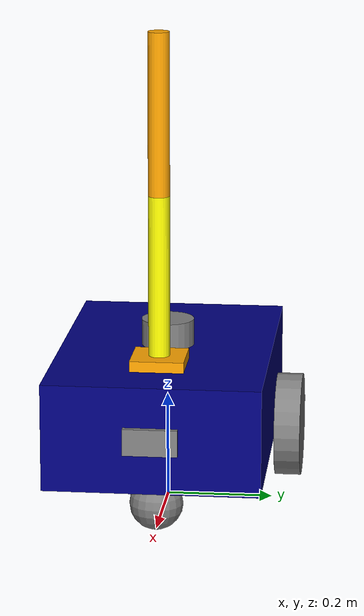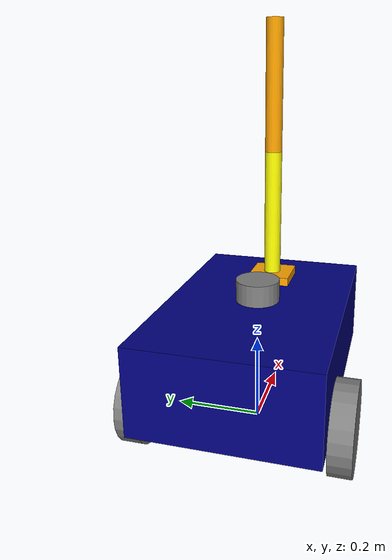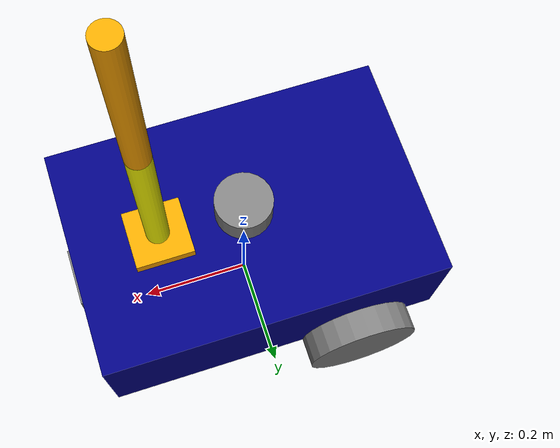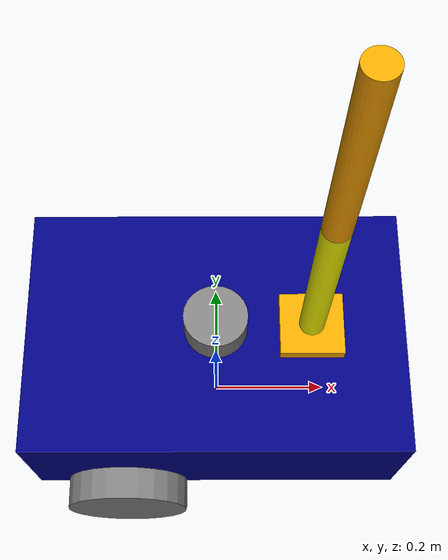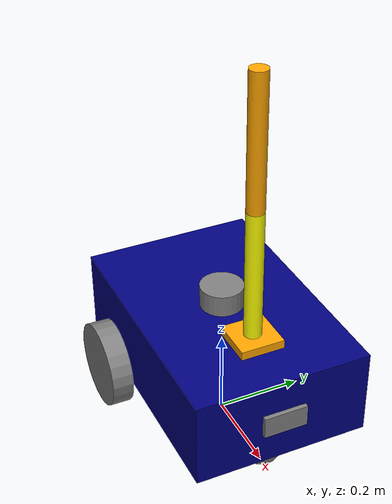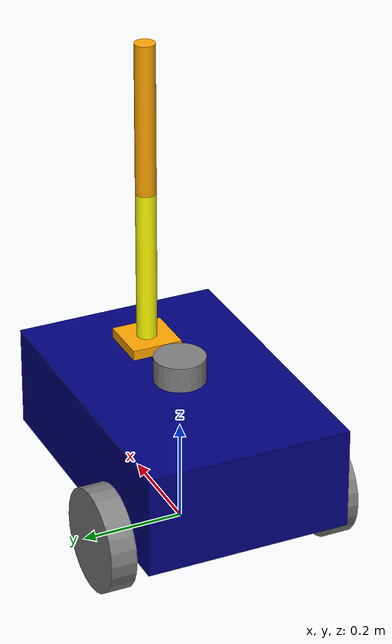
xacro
<?xml version="1.0"?>
<robot name="nav2_robot" xmlns:xacro="http://www.ros.org/wiki/xacro">

    <xacro:include filename="common_properties.xacro"/>

    <xacro:include filename="mobile_base.xacro"/>

    <xacro:include filename="mobile_base_gazebo.xacro"/>

    <xacro:include filename="arm.xacro"/>

    <xacro:include filename="mobile_arm_gazebo.xacro"/>

    <xacro:include filename="camera.xacro"/>

    <xacro:include filename="lidar.xacro"/>

    <joint name="base_arm_base_joint" type="fixed">
        <parent link="base_link"/>
        <child link="arm_base_link"/>
        <origin xyz="${(base_length/4.0)} 0 ${base_height}" rpy="0 0 0"/>
    </joint>
</robot>

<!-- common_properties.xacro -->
<robot xmlns:xacro="http://www.ros.org/wiki/xacro">

    <material name="blue">
        <color rgba="0.0 0.0 0.5 1.0"/>
    </material>
    <material name="grey">
        <color rgba="0.5 0.5 0.5 1.0"/>
    </material>

    <xacro:macro name="box_inertia" params="m x y z o_xyz o_rpy">
        <inertial>
            <mass value="${m}"/>
            <origin xyz="${o_xyz}" rpy="${o_rpy}"/>
            <inertia ixx="${(m/12)*(y*y+z*z)}" ixy="0.0" ixz="0.0"
            iyy="${(m/12)*(x*x+z*z)}" iyz="0.0" izz="${(m/12)*(y*y+x*x)}"/>
        </inertial>
    </xacro:macro>

    <xacro:macro name="cylinder_inertia" params="m r l o_xyz o_rpy">
        <inertial>
            <mass value="${m}"/>
            <origin xyz="${o_xyz}" rpy="${o_rpy}"/>
            <inertia ixx="${(m/12.0)*(3*r*r+l*l)}" ixy="0.0" ixz="0.0" iyy="${(m/12.0)*(3*r*r+l*l)}" iyz="0.0" izz="${(m*r*r)/2.0}"/>
        </inertial>
    </xacro:macro>

    <xacro:macro name="sphere_inertia" params="m r o_xyz o_rpy">
        <inertial>
            <mass value="${m}"/>
            <origin xyz="${o_xyz}" rpy="${o_rpy}"/>
            <inertia ixx="${(2*m*r*r)/5.0}" ixy="0.0" ixz="0.0" iyy="${(2*m*r*r)/5.0}" iyz="0.0" izz="${(2*m*r*r)/5.0}"/>
        </inertial>
    </xacro:macro>

</robot>

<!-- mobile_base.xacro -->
<robot xmlns:xacro="http://www.ros.org/wiki/xacro">

    <xacro:property name="base_length" value="0.6"/>
    <xacro:property name="base_width" value="0.4"/>
    <xacro:property name="base_height" value="0.2"/>
    <xacro:property name="wheel_radius" value="0.1"/>
    <xacro:property name="wheel_length" value="0.05"/>

    <link name="base_footprint">
        <origin xyz="0 0 0" rpy="0 0 0"/>
    </link>

    <link name="base_link">
        <visual>
            <geometry>
                <box size="${base_length} ${base_width} ${base_height}"/>
            </geometry>
            <origin xyz="0 0 ${base_height/2.0}" rpy="0 0 0"/>
            <material name="blue"/>
        </visual>
        <collision>
            <geometry>
                <box size="${base_length} ${base_width} ${base_height}"/>
            </geometry>
            <origin xyz="0 0 ${base_height/2.0}" rpy="0 0 0"/>
        </collision>
        <xacro:box_inertia m="5.0" x="${base_length}" y="${base_width}" z="${base_height}"
        o_xyz="0 0 ${base_height/2.0}" o_rpy="0 0 0"/>
    </link>

    <xacro:macro name="wheel_link" params="prefix">
        <link name="${prefix}_wheel_link">
            <visual>
                <geometry>
                    <cylinder radius="${wheel_radius}" length="${wheel_length}"/>
                </geometry>
                <origin xyz="0 0 0" rpy="${pi / 2.0} 0 0"/>
                <material name="grey"/>
            </visual>
            <collision>
                <geometry>
                    <sphere radius="${wheel_radius}"/>
                </geometry>
                <origin xyz="0 0 0" rpy="0 0 0"/>
            </collision>
            <xacro:cylinder_inertia m="1.0" r="${wheel_radius}" l="${wheel_length}" o_xyz="0 0 0" o_rpy="${pi/2.0} 0 0"/>
        </link>
    </xacro:macro>

    <xacro:wheel_link prefix="right"/>
    <xacro:wheel_link prefix="left"/>

    <link name="caster_wheel_link">
        <visual>
            <geometry>
                <sphere radius="${wheel_radius/2.0}"/>
            </geometry>
            <origin xyz="0 0 0" rpy="0 0 0"/>
            <material name="grey"/>
        </visual>
        <collision>
            <geometry>
                    <sphere radius="${wheel_radius/2.0}"/>
            </geometry>
            <origin xyz="0 0 0" rpy="0 0 0"/>
        </collision>
        <xacro:sphere_inertia m="0.5" r="${wheel_radius/2.0}" o_xyz="0 0 0" o_rpy="0 0 0"/>
    </link>

    <joint name="base_footprint_joint" type="fixed">
        <parent link="base_footprint"/>
        <child link="base_link"/>
        <origin xyz="0 0 ${wheel_radius}" rpy="0 0 0"/>
    </joint>

    <joint name="base_right_wheel_joint" type="continuous">
        <parent link="base_link"/>
        <child link="right_wheel_link"/>
        <origin xyz="${-base_length/4.0} ${-(base_width + wheel_length)/2.0} 0" rpy="0 0 0"/>
        <axis xyz="0.0 1.0 0.0"/>
    </joint>

    <joint name="base_left_wheel_joint" type="continuous">
        <parent link="base_link"/>
        <child link="left_wheel_link"/>
        <origin xyz="${-base_length/4.0} ${(base_width + wheel_length)/2.0} 0" rpy="0 0 0"/>
        <axis xyz="0.0 1.0 0.0"/>
    </joint>

    <joint name="base_caster_wheel_joint" type="fixed">
        <parent link="base_link"/>
        <child link="caster_wheel_link"/>
        <origin xyz="${base_length/3.0} 0 ${-wheel_radius/2.0}" rpy="0 0 0"/>
        <axis xyz="0.0 0.0 0.0"/>
    </joint>

</robot>

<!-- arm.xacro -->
<robot xmlns:xacro="http://www.ros.org/wiki/xacro">

    <material name="orange">
        <color rgba="1.0 0.647 0.0 1.0"/>
    </material>

    <material name="yellow">
        <color rgba= "1 1 0 1"/>
    </material>

    <link name="arm_base_link">
        <visual>
            <geometry>
                <box size="0.1 0.1 0.02"/>
            </geometry>
            <origin xyz="0 0 0.01" rpy="0 0 0"/>
            <material name="orange"/>
        </visual>
        <collision>
            <geometry>
                <box size="0.1 0.1 0.02"/>
            </geometry>
            <origin xyz="0 0 0.01" rpy="0 0 0"/>
        </collision>
        <xacro:box_inertia m="0.5" x="0.1" y="0.1" z="0.02" o_xyz="0 0 0.01" o_rpy="0 0 0"/>
    </link>

    <link name="forearm_link">
        <visual>
            <geometry>
                <cylinder radius="0.02" length="0.3"/>
            </geometry>
            <origin xyz="0 0 0.15" rpy="0 0 0"/>
            <material name="yellow"/>
        </visual>
        <collision>
            <geometry>
                <cylinder radius="0.02" length="0.3"/>
            </geometry>
            <origin xyz="0 0 0.15" rpy="0 0 0"/>
        </collision>
        <xacro:cylinder_inertia m="0.3" r="0.02" l="0.3" o_xyz="0 0 0.15" o_rpy="0 0 0"/>
    </link>

    <link name="hand_link">
        <visual>
            <geometry>
                <cylinder radius="0.02" length="0.3"/>
            </geometry>
            <origin xyz="0 0 0.15" rpy="0 0 0"/>
            <material name="orange"/>
        </visual>
        <collision>
            <geometry>
                <cylinder radius="0.02" length="0.3"/>
            </geometry>
            <origin xyz="0 0 0.15" rpy="0 0 0"/>
        </collision>
        <xacro:cylinder_inertia m="0.3" r="0.02" l="0.3" o_xyz="0 0 0.15" o_rpy="0 0 0"/>
    </link>

    <joint name="arm_base_forearm_joint" type="revolute">
        <parent link="arm_base_link"/>
        <child link="forearm_link"/>
        <origin xyz="0 0 0.02" rpy="0 0 0"/>
        <axis xyz="0 1 0"/>
        <limit lower="0" upper="${pi / 2.0}" effort="100" velocity="100"/>
        <dynamics friction="0.3" damping="0.3"/>
    </joint>

    <joint name="forearm_hand_joint" type="revolute">
        <parent link="forearm_link"/>
        <child link="hand_link"/>
        <origin xyz="0 0 0.3" rpy="0 0 0"/>
        <axis xyz="0 1 0"/>
        <limit lower="0" upper="${pi / 2.0}" effort="100" velocity="100"/>
        <dynamics friction="0.3" damping="0.3"/>
    </joint>

</robot>

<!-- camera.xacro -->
<robot xmlns:xacro="http://www.ros.org/wiki/xacro">

    <xacro:property name="camera_length" value="0.01"/>
    <xacro:property name="camera_width" value="0.1"/>
    <xacro:property name="camera_height" value="0.05"/>

    <link name="camera_link">
        <visual>
            <geometry>
                <box size="${camera_length} ${camera_width} ${camera_height}"/>
            </geometry>
            <material name="grey"/>
        </visual>
        <collision>
            <geometry>
                <box size="${camera_length} ${camera_width} ${camera_height}"/>
            </geometry>
        </collision>
        <xacro:box_inertia m="0.1" x="${camera_length}" y="${camera_width}" z="${camera_height}" o_xyz="0 0 0" o_rpy="0 0 0"/>
    </link>

    <joint name="base_camera_joint" type="fixed">
        <parent link="base_link"/>
        <child link="camera_link"/>
        <origin xyz="${(base_length+camera_length)/2.0} 0 ${base_height/2.0}" rpy="0 0 0"/>
    </joint>

    <link name="camera_link_optical"/>

    <joint name="camera_optical_joint" type="fixed">
        <origin xyz="0 0 0" rpy="${-pi/2} 0 ${-pi/2}"/>
        <parent link="camera_link"/>
        <child link="camera_link_optical"/>
    </joint>

    <gazebo reference="camera_link">
        <sensor name="camera" type="camera  ">
            <camera>
                <horizontal_fov>1.3962634</horizontal_fov>
                <image>
                    <width>640</width>
                    <height>480</height>
                    <format>R8G8B8</format>
                </image>
                <clip>
                    <near>0.1</near>
                    <far>15</far>
                </clip>
                <noise>
                    <type>gaussian</type>
                    <mean>0.0</mean>
                    <stddev>0.007</stddev>
                </noise>
                <optical_frame_id>camera_link_optical</optical_frame_id>
                <camera_info_topic>camera/camera_info</camera_info_topic>
            </camera>
            <always_on>1</always_on>
            <update_rate>20</update_rate>
            <visualize>true</visualize>
            <topic>camera/image_raw</topic>
        </sensor>
    </gazebo>

</robot>

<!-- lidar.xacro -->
<robot xmlns:xacro="http://www.ros.org/wiki/xacro">

    <link name="lidar_link">
        <visual>
            <geometry>
                <cylinder radius="0.05" length="0.05"/>
            </geometry>
            <origin xyz="0 0 0.025" rpy="0 0 0"/>
            <material name="grey"/>
            </visual>
        <collision>
            <geometry>
                <cylinder radius="0.05" length="0.05"/>
            </geometry>
            <origin xyz="0 0 0.025" rpy="0 0 0"/>
        </collision>
        <inertial>
            <mass value="0.5"/>
            <origin xyz="0 0 0.025"/>
            <inertia ixx="0.001" iyy="0.001" izz="0.001" ixy="0" ixz="0" iyz="0"/>
        </inertial>
    </link>

    <joint name="base_lidar_joint" type="fixed">
        <parent link="base_link"/>
        <child link="lidar_link"/>
        <origin xyz="0 0 ${base_height}" rpy="0 0 0"/>
    </joint>

    <gazebo reference="lidar_link">
        <sensor type="gpu_ray" name="lidar">
            <update_rate>10</update_rate>
            <visualize>true</visualize>
            <topic>/world/world_demo/model/nav2_robot/lidar/scan</topic>
            <gz_frame_id>lidar_link</gz_frame_id>
            <plugin filename="libignition-gazebo-sensors-system.so" name="ignition::gazebo::systems::Sensors">
                <render_engine>ogre2</render_engine>
            </plugin>
            <ray>
                <scan>
                    <horizontal>
                        <samples>360</samples>
                        <resolution>1</resolution>
                        <min_angle>-3.14159</min_angle>
                        <max_angle>3.14159</max_angle>
                    </horizontal>
                </scan>
                <range>
                    <min>0.1</min>
                    <max>10.0</max>
                    <resolution>0.01</resolution>
                </range>
            </ray>
        </sensor>
    </gazebo>

</robot>
